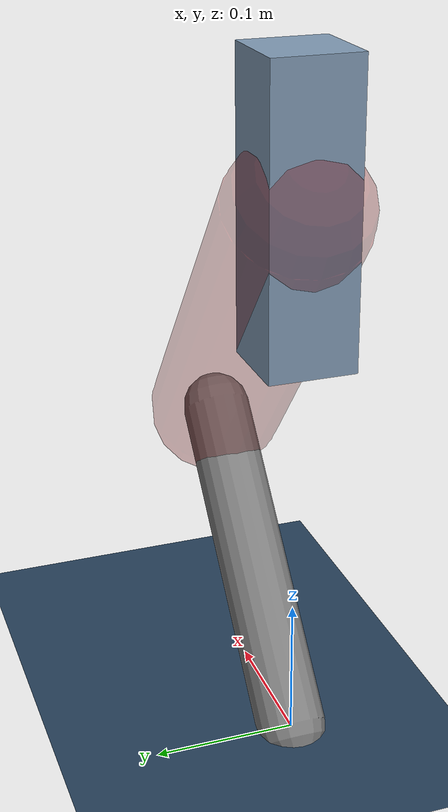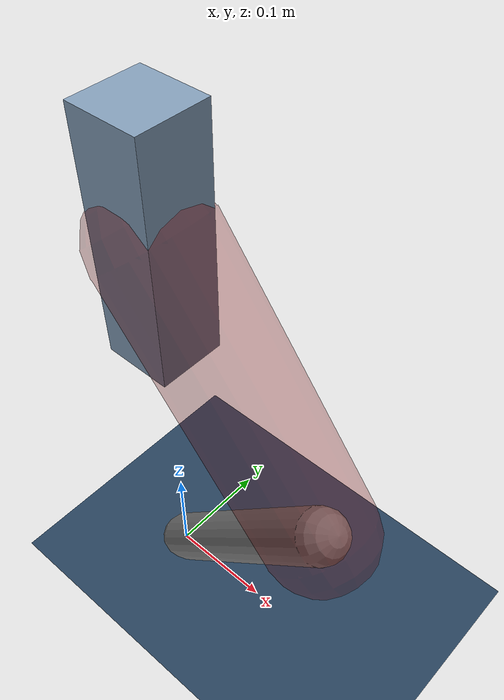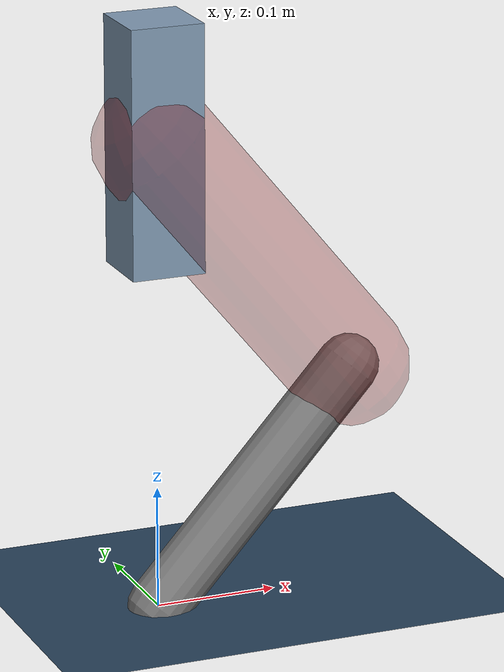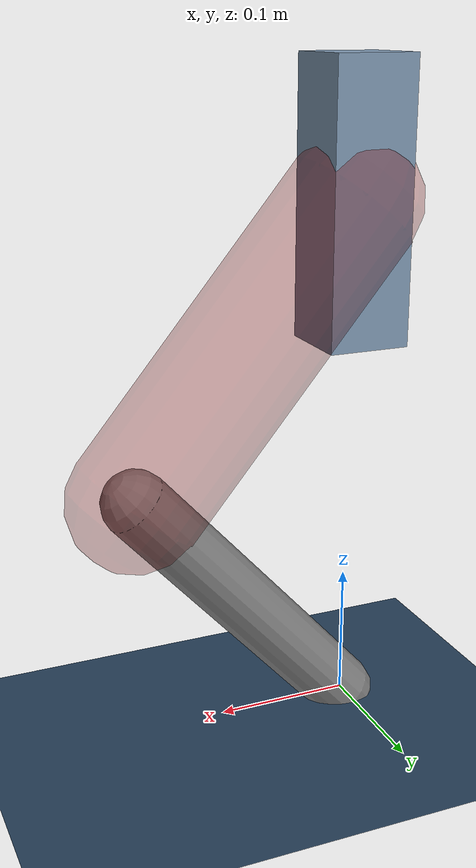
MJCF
<mujoco model="Hopper2D">
	<compiler inertiafromgeom="true" angle="radian" />
	<option timestep="0.001" integrator="implicit" cone="elliptic" solver="Newton" tolerance="1e-10" />

	<default>
		<geom contype="1" conaffinity="1" condim="3" friction="2 0.005 0.0001" solref="0.005 1" />
		<joint limited="true" damping="0.1" />
	</default>

	<asset>
		<texture name="skybox" type="skybox" builtin="gradient" rgb1=".4 .6 .8" rgb2="0 0 0" width="800" height="800" />
		<texture name="grid" type="2d" builtin="checker" rgb1=".1 .2 .3" rgb2=".2 .3 .4" width="300" height="300" mark="edge" markrgb=".2 .3 .4" />
		<material name="ground" texture="grid" texrepeat="1 1" texuniform="true" reflectance="0.1" />
		<material name="leg" rgba="0.5 0.6 0.7 1" />
	</asset>

	<worldbody>

		<geom name="floor" type="plane" size="5 5 0.25" material="ground" />

		<light directional="false" diffuse="0.8 0.8 0.8" specular="0.3 0.3 0.3" pos="0 0 2" dir="0 0 -1" />
		<light mode="targetbodycom" target="base" directional="false" diffuse="0.8 0.8 0.8" specular="0.3 0.3 0.3" pos="0 0 2" dir="0 0 -1" />

		<camera name="fixed" pos="0 -2 1" xyaxes="1 0 0 0 0 1" />
		<camera name="tracking" mode="trackcom" pos="0 -3 1" />

		<body name="root" pos="0 0 0.38422421359502473">
			<joint name="slide_x" type="slide" axis="1 0 0" range="-100 100" />
			<joint name="slide_z" type="slide" axis="0 0 1" range="0 10" />

			<body name="base" pos="0 0 0">
				<geom name="torso" type="box" size="0.03 0.03 0.1" mass="3.614" material="leg" />

				<body name="link1" pos="0 0 0" euler="0 0.8814890655380007 0">
					<joint type="hinge" axis="0 -1 0" pos="0 0 0" name="hinge1" limited="true" range="-3.14 3.14" stiffness="0" damping="0.1" />
					<geom name="thigh" type="capsule" fromto="0 0 0 0.25993097827429523 0 0" size="0.05" rgba="0.5 0 0 0.3" mass="0.8822205435131676" />

					<body name="link2" pos="0.25993097827429523 0 0" euler="0 1.4222480979420995 0">
						<joint type="hinge" axis="0 -1 0" pos="0 0 0" name="hinge2" limited="true" range="-3.14 3.14" stiffness="0" damping="0.1" />
						<geom name="shank" type="capsule" fromto="0 0 0 0.2470888523883049 0 0" size="0.025" mass="0.4401710819106439" />

					</body>
				</body>
			</body>
		</body>
	</worldbody>

	<actuator>
		<motor name="torque1" joint="hinge1" ctrlrange="-134.41368284831387 134.41368284831387" ctrllimited="true" gear="1" />
		<motor name="torque2" joint="hinge2" ctrlrange="-100.08532866941849 100.08532866941849" ctrllimited="true" gear="1" />
	</actuator>
</mujoco>
